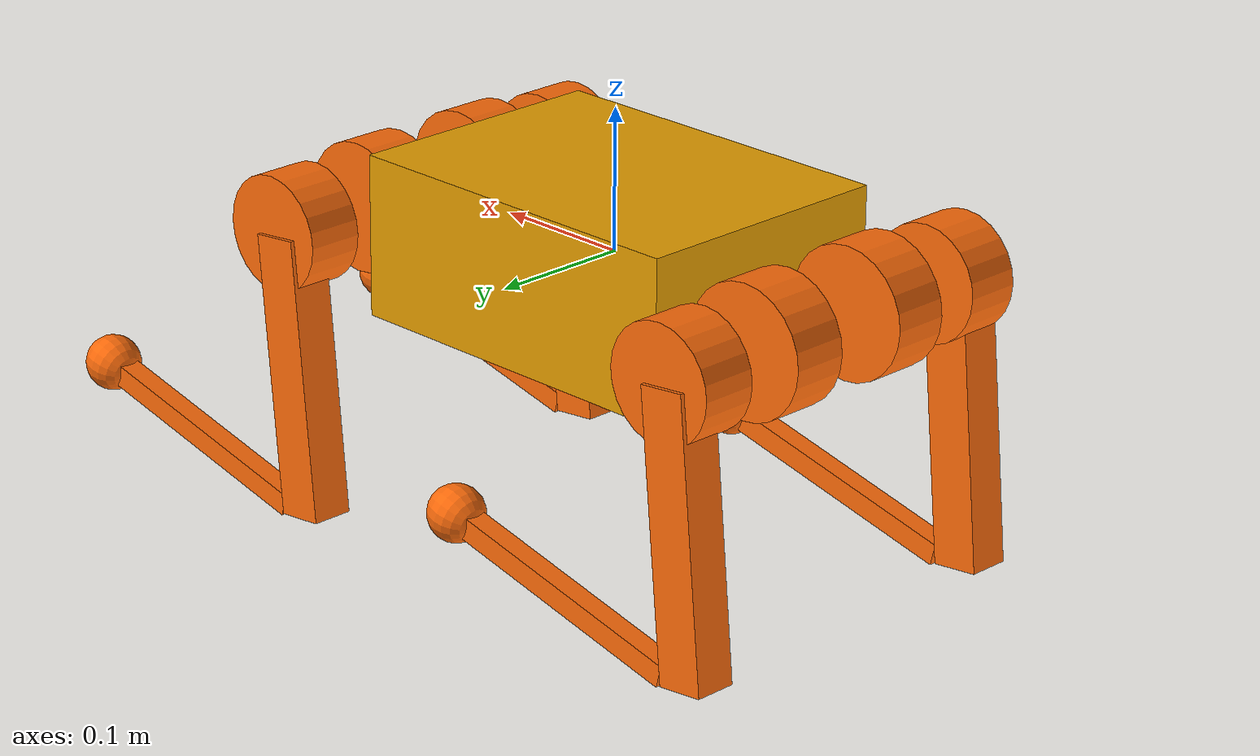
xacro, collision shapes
<?xml version="1.0"?>

<robot xmlns:xacro="http://www.ros.org/wiki/xacro" name="robot">

    <xacro:arg name="robot_type" default="a1"/>

    <xacro:include filename="$(find legged_robot_description)/urdf/common/materials.xacro"/>
    <xacro:include filename="$(find legged_robot_description)/urdf/common/leg.xacro"/>
    <xacro:include filename="$(find legged_robot_description)/urdf/common/gazebo.xacro"/>
    <xacro:include filename="$(find legged_robot_description)/urdf/common/imu.xacro"/>

    <xacro:include filename="$(find legged_robot_description)/urdf/$(arg robot_type)/const.xacro"/>

    <link name="base">
        <visual>
            <origin rpy="0 0 0" xyz="0 0 0"/>
            <geometry>
                <mesh filename="${mesh_path}/${trunk_mesh_file}" scale="1 1 1"/>
            </geometry>
        </visual>
        <collision>
            <origin rpy="0 0 0" xyz="0 0 0"/>
            <geometry>
                <box size="${trunk_length} ${trunk_width} ${trunk_height}"/>
            </geometry>
        </collision>
        <inertial>
            <origin rpy="0 0 0" xyz="${trunk_com_x} ${trunk_com_y} ${trunk_com_z}"/>
            <mass value="${trunk_mass}"/>
            <inertia
                    ixx="${trunk_ixx}" ixy="${trunk_ixy}" ixz="${trunk_ixz}"
                    iyy="${trunk_iyy}" iyz="${trunk_iyz}"
                    izz="${trunk_izz}"/>
        </inertial>
    </link>

    <xacro:IMU connected_to="base" imu_name="imu" xyz="0. 0. 0." rpy="0. 0. 0."/>

    <xacro:leg prefix="LF" mesh_path="${mesh_path}" mirror="1" mirror_dae="True" front_hind="1" front_hind_dae="True">
        <origin rpy="0 0 0" xyz="${leg_offset_x} ${leg_offset_y} 0"/>
    </xacro:leg>

    <xacro:leg prefix="LH" mesh_path="${mesh_path}" mirror="1" mirror_dae="True" front_hind="-1" front_hind_dae="False">
        <origin rpy="0 0 0" xyz="${-leg_offset_x} ${leg_offset_y} 0"/>
    </xacro:leg>

    <xacro:leg prefix="RF" mesh_path="${mesh_path}" mirror="-1" mirror_dae="False" front_hind="1" front_hind_dae="True">
        <origin rpy="0 0 0" xyz="${leg_offset_x} ${-leg_offset_y} 0"/>
    </xacro:leg>

    <xacro:leg prefix="RH" mesh_path="${mesh_path}" mirror="-1" mirror_dae="False" front_hind="-1" front_hind_dae="False">
        <origin rpy="0 0 0" xyz="${-leg_offset_x} ${-leg_offset_y} 0"/>
    </xacro:leg>

</robot>

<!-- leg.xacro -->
<robot xmlns:xacro="http://www.ros.org/wiki/xacro">

    <xacro:include filename="$(find legged_robot_description)/urdf/common/transmission.xacro"/>

    <xacro:macro name="leg" params="prefix mesh_path mirror mirror_dae front_hind front_hind_dae *origin">

        <joint name="${prefix}_HAA" type="revolute">
            <xacro:insert_block name="origin"/>
            <parent link="base"/>
            <child link="${prefix}_hip"/>
            <axis xyz="${haa_axis_x} 0 0"/>
            <dynamics damping="${damping}" friction="${friction}"/>
            <xacro:if value="${(mirror_dae == True)}">
                <limit effort="${hip_torque_max}" velocity="${hip_velocity_max}" lower="${hip_position_min}"
                       upper="${hip_position_max}"/>
            </xacro:if>
            <xacro:if value="${(mirror_dae == False)}">
                <limit effort="${hip_torque_max}" velocity="${hip_velocity_max}" lower="${-hip_position_max}"
                       upper="${-hip_position_min}"/>
            </xacro:if>
        </joint>

        <link name="${prefix}_hip">
            <visual>
                <xacro:if value="${(mirror_dae == True) and (front_hind_dae == True)}">
                    <origin rpy="0 0 0" xyz="0 0 0"/>
                </xacro:if>
                <xacro:if value="${(mirror_dae == False) and (front_hind_dae == True)}">
                    <origin rpy="${pi} 0 0" xyz="0 0 0"/>
                </xacro:if>
                <xacro:if value="${(mirror_dae == True) and (front_hind_dae == False)}">
                    <origin rpy="0 ${pi} 0" xyz="0 0 0"/>
                </xacro:if>
                <xacro:if value="${(mirror_dae == False) and (front_hind_dae == False)}">
                    <origin rpy="${pi} ${pi} 0" xyz="0 0 0"/>
                </xacro:if>
                <geometry>
                    <mesh filename="${mesh_path}/${hip_mesh_file}"
                          scale="1 1 1"/>
                </geometry>
                <material name="orange"/>
            </visual>
            <collision>
                <origin rpy="${pi/2.0} 0 0" xyz="0 0 0"/>
                <geometry>
                    <cylinder length="${hip_length}" radius="${hip_radius}"/>
                </geometry>
            </collision>
            <inertial>
                <origin rpy="0 0 0" xyz="${hip_com_x*front_hind} ${hip_com_y*mirror} ${hip_com_z}"/>
                <mass value="${hip_mass}"/>
                <inertia
                        ixx="${hip_ixx}" ixy="${hip_ixy*mirror*front_hind}" ixz="${hip_ixz*front_hind}"
                        iyy="${hip_iyy}" iyz="${hip_iyz*mirror}"
                        izz="${hip_izz}"/>
            </inertial>
        </link>

        <joint name="${prefix}_HFE" type="revolute">
            <origin rpy="0 0 0" xyz="0 ${thigh_offset*mirror} 0"/>
            <parent link="${prefix}_hip"/>
            <child link="${prefix}_thigh"/>
            <axis xyz="0 ${hfe_axis_y} 0"/>
            <dynamics damping="${damping}" friction="${friction}"/>
            <limit effort="${thigh_torque_max}" velocity="${thigh_velocity_max}" lower="${thigh_position_min}"
                   upper="${thigh_position_max}"/>
        </joint>

        <link name="${prefix}_thigh">
            <visual>
                <origin rpy="0 0 0" xyz="0 0 0"/>
                <geometry>
                    <xacro:if value="${mirror_dae == True}">
                        <mesh filename="${mesh_path}/${thigh_mesh_file}"
                              scale="1 1 1"/>
                    </xacro:if>
                    <xacro:if value="${mirror_dae == False}">
                        <mesh filename="${mesh_path}/${thigh_mirror_mesh_file}"
                              scale="${thigh_mirror_mesh_scale}"/>
                    </xacro:if>
                </geometry>
                <material name="orange"/>
            </visual>
            <collision>
                <origin rpy="0 ${pi/2.0+0.1} 0" xyz="${thigh_x_offset} 0 ${-thigh_length/2.0}"/>
                <geometry>
                    <box size="${thigh_length} ${thigh_width} ${thigh_height}"/>
                </geometry>
            </collision>
            <collision>
                <origin rpy="${pi/2.0} 0 0" xyz="0 ${mirror*thigh_shoulder_y_offset} 0"/>
                <geometry>
                    <cylinder length="${thigh_shoulder_length}" radius="${thigh_shoulder_radius}"/>
                </geometry>
            </collision>
            <inertial>
                <origin rpy="0 0 0" xyz="${thigh_com_x} ${thigh_com_y*mirror} ${thigh_com_z}"/>
                <mass value="${thigh_mass}"/>
                <inertia
                        ixx="${thigh_ixx}" ixy="${thigh_ixy*mirror}" ixz="${thigh_ixz}"
                        iyy="${thigh_iyy}" iyz="${thigh_iyz*mirror}"
                        izz="${thigh_izz}"/>
            </inertial>
        </link>

        <joint name="${prefix}_KFE" type="revolute">
            <origin rpy="0 0 0" xyz="0 0 ${-thigh_length}"/>
            <parent link="${prefix}_thigh"/>
            <child link="${prefix}_calf"/>
            <axis xyz="0 ${kfe_axis_y} 0"/>
            <dynamics damping="${damping}" friction="${friction}"/>
            <limit effort="${calf_torque_max}" velocity="${calf_velocity_max}" lower="${calf_position_min}" upper="${calf_position_max}"/>
        </joint>

        <link name="${prefix}_calf">
            <visual>
                <origin rpy="0 0 0" xyz="0 0 0"/>
                <geometry>
                    <mesh filename="${mesh_path}/${calf_mesh_file}"
                          scale="1 1 1"/>
                </geometry>
                <material name="orange"/>
            </visual>
            <collision>
                <origin rpy="0 ${pi/2.0} 0" xyz="${calf_x_offset} 0 ${-calf_length/2.0}"/>
                <geometry>
                    <box size="${calf_length} ${calf_width} ${calf_height}"/>
                </geometry>
            </collision>
            <inertial>
                <origin rpy="0 0 0" xyz="${calf_com_x} ${calf_com_y} ${calf_com_z}"/>
                <mass value="${calf_mass}"/>
                <inertia
                        ixx="${calf_ixx}" ixy="${calf_ixy}" ixz="${calf_ixz}"
                        iyy="${calf_iyy}" iyz="${calf_iyz}"
                        izz="${calf_izz}"/>
            </inertial>
        </link>

        <joint name="${prefix}_foot_fixed" type="fixed" dont_collapse="true">
            <origin rpy="0 0 0" xyz="0 0 ${-(calf_length)}"/>
            <parent link="${prefix}_calf"/>
            <child link="${prefix}_FOOT"/>
        </joint>

        <link name="${prefix}_FOOT">
            <visual>
                <origin rpy="0 0 0" xyz="0 0 0"/>
                <geometry>
                    <sphere radius="${foot_radius-0.01}"/>
                </geometry>
                <material name="orange"/>
            </visual>
            <collision>
                <origin rpy="0 0 0" xyz="0 0 0"/>
                <geometry>
                    <sphere radius="${foot_radius}"/>
                </geometry>
            </collision>
            <inertial>
                <mass value="${foot_mass}"/>
                <inertia
                        ixx="${(2*foot_mass)/5.0*(foot_radius*foot_radius)}" ixy="0.0" ixz="0.0"
                        iyy="${(2*foot_mass)/5.0*(foot_radius*foot_radius)}" iyz="0.0"
                        izz="${(2*foot_mass)/5.0*(foot_radius*foot_radius)}"/>
            </inertial>
        </link>

        <gazebo reference="${prefix}_foot_fixed">
            <disableFixedJointLumping>true</disableFixedJointLumping>
        </gazebo>

        <gazebo reference="${prefix}_hip">
            <mu1>0.2</mu1>
            <mu2>0.2</mu2>
            <material>Gazebo/DarkGrey</material>
        </gazebo>
        <gazebo reference="${prefix}_thigh">
            <mu1>0.2</mu1>
            <mu2>0.2</mu2>
            <self_collide>0</self_collide>
            <material>Gazebo/DarkGrey</material>
            <kp value="1000000.0"/>
            <kd value="100.0"/>
        </gazebo>
        <gazebo reference="${prefix}_calf">
            <mu1>0.2</mu1>
            <mu2>0.2</mu2>
            <self_collide>1</self_collide>
        </gazebo>
        <gazebo reference="${prefix}_FOOT">
            <mu1>0.6</mu1>
            <mu2>0.6</mu2>
            <self_collide>1</self_collide>
            <material>Gazebo/DarkGrey</material>
            <kp value="1000000.0"/>
            <kd value="100.0"/>
        </gazebo>

        <xacro:leg_transmission prefix="${prefix}"/>
    </xacro:macro>
</robot>

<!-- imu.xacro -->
<robot xmlns:xacro="http://www.ros.org/wiki/xacro" name="imu">
    <xacro:macro name="IMU" params="connected_to imu_name xyz:='0 0 0' rpy:='0 0 0' ">
        <!-- Imu is fixed to the base link -->
        <joint name="${imu_name}_joint" type="fixed">
            <origin xyz="${xyz}" rpy="${rpy}"/>
            <parent link="${connected_to}"/>
            <child link="${imu_name}"/>
        </joint>
        <!-- Imu link -->
        <link name="${imu_name}">
            <inertial>
                <mass value="0.01"/>
                <origin rpy="0 0 0" xyz="0 0 0"/>
                <inertia ixx="0.0001" ixy="0" ixz="0" iyy="0.0001" iyz="0" izz="0.0001"/>
            </inertial>
            <visual>
                <origin rpy="0 0 0" xyz="0 0 0"/>
                <geometry>
                    <box size="0.001 0.001 0.001"/>
                </geometry>
                <material name="orange">
                    <color rgba="1.0 0.4235 0.0392 1.0"/>
                </material>
            </visual>
            <collision>
            	<origin rpy="0 0 0" xyz="0 0 0"/>
            	<geometry>
                 <box size=".001 .001 .001"/>
            	</geometry>
            </collision>
        </link>
        <gazebo reference="${imu_name}">
            <material>Gazebo/Orange</material>
        </gazebo>
        <gazebo reference="${imu_name}_joint">
            <disableFixedJointLumping>true</disableFixedJointLumping>
        </gazebo>
    </xacro:macro>
</robot>

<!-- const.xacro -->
<robot xmlns:xacro="http://www.ros.org/wiki/xacro" name="a1_description">

    <!-- Constants for robot dimensions -->
    <xacro:property name="stick_mass" value="0.00001"/>

    <!-- simplified collision value -->
    <xacro:property name="trunk_width" value="0.194"/>
    <xacro:property name="trunk_length" value="0.267"/>
    <xacro:property name="trunk_height" value="0.114"/>
    <xacro:property name="hip_radius" value="0.046"/>
    <xacro:property name="hip_length" value="0.04"/>
    <xacro:property name="thigh_shoulder_radius" value="0.041"/>
    <xacro:property name="thigh_shoulder_length" value="0.04"/>
    <xacro:property name="thigh_shoulder_y_offset" value="-0.008"/>

    <xacro:property name="thigh_width" value="0.03"/>
    <xacro:property name="thigh_height" value="0.034"/>
    <xacro:property name="thigh_x_offset" value="-0.015"/>
    <xacro:property name="calf_width" value="0.016"/>
    <xacro:property name="calf_height" value="0.016"/>
    <xacro:property name="calf_x_offset" value="0.0"/>
    <xacro:property name="foot_radius" value="0.02"/>
    <xacro:property name="mesh_path" value="file://$(find legged_robot_description)/meshes/a1"/>
    <xacro:property name="trunk_mesh_file" value="trunk.dae"/>
    <xacro:property name="hip_mesh_file" value="hip.dae"/>
    <xacro:property name="thigh_mesh_file" value="thigh.dae"/>
    <xacro:property name="thigh_mirror_mesh_file" value="thigh_mirror.dae"/>
    <xacro:property name="thigh_mirror_mesh_scale" value="1 1 1"/>
    <xacro:property name="calf_mesh_file" value="calf.dae"/>
    <xacro:property name="haa_axis_x" value="1"/>
    <xacro:property name="hfe_axis_y" value="1"/>
    <xacro:property name="kfe_axis_y" value="1"/>

    <!-- kinematic value -->
    <xacro:property name="thigh_offset" value="0.0838"/>
    <xacro:property name="thigh_length" value="0.2"/>
    <xacro:property name="calf_length" value="0.2"/>

    <!-- leg offset from trunk center value -->
    <xacro:property name="leg_offset_x" value="0.1805"/>
    <xacro:property name="leg_offset_y" value="0.047"/>
    <xacro:property name="trunk_offset_z" value="0.01675"/>
    <xacro:property name="hip_offset" value="0.065"/>

    <!-- joint limits -->
    <xacro:property name="damping" value="0"/>
    <xacro:property name="friction" value="0"/>
    <xacro:property name="hip_position_max" value="${46*pi/180.0}"/>
    <xacro:property name="hip_position_min" value="${-46*pi/180.0}"/>
    <xacro:property name="hip_velocity_max" value="21"/>
    <xacro:property name="hip_torque_max" value="33.5"/>
    <xacro:property name="thigh_position_max" value="${240*pi/180.0}"/>
    <xacro:property name="thigh_position_min" value="${-60*pi/180.0}"/>
    <xacro:property name="thigh_velocity_max" value="21"/>
    <xacro:property name="thigh_torque_max" value="33.5"/>
    <xacro:property name="calf_position_max" value="${-52.5*pi/180.0}"/>
    <xacro:property name="calf_position_min" value="${-154.5*pi/180.0}"/>
    <xacro:property name="calf_velocity_max" value="21"/>
    <xacro:property name="calf_torque_max" value="33.5"/>

    <!-- dynamics inertial value -->
    <!-- trunk -->
    <!-- trunk_mass_ori=6 y=0.0041 x_m=-0.0080-->
    <xacro:property name="trunk_mass" value="10.0"/>
    <xacro:property name="trunk_com_x" value="-0.0080"/>
    <xacro:property name="trunk_com_y" value="0.0041"/>
    <xacro:property name="trunk_com_z" value="-0.0005"/>
    <xacro:property name="trunk_ixx" value="0.0158533"/>
    <xacro:property name="trunk_ixy" value="-0.0000366"/>
    <xacro:property name="trunk_ixz" value="-0.0000611"/>
    <xacro:property name="trunk_iyy" value="0.0377999"/>
    <xacro:property name="trunk_iyz" value="-0.0000275"/>
    <xacro:property name="trunk_izz" value="0.0456542"/>

    <!-- hip (left front) -->
    <xacro:property name="hip_mass" value="0.595"/>
    <xacro:property name="hip_com_x" value="-0.003875"/>
    <xacro:property name="hip_com_y" value="0.001622"/>
    <xacro:property name="hip_com_z" value="0.000042"/>
    <xacro:property name="hip_ixx" value="0.000402747"/>
    <xacro:property name="hip_ixy" value="-0.000008709"/>
    <xacro:property name="hip_ixz" value="-0.000000297"/>
    <xacro:property name="hip_iyy" value="0.000691123"/>
    <xacro:property name="hip_iyz" value="-0.000000545"/>
    <xacro:property name="hip_izz" value="0.000487919"/>

    <!-- thigh -->
    <xacro:property name="thigh_mass" value="0.888"/>
    <xacro:property name="thigh_com_x" value="-0.003574"/>
    <xacro:property name="thigh_com_y" value="-0.019529"/>
    <xacro:property name="thigh_com_z" value="-0.030323"/>
    <xacro:property name="thigh_ixx" value="0.005251806"/>
    <xacro:property name="thigh_ixy" value="-0.000002168"/>
    <xacro:property name="thigh_ixz" value="0.000346889"/>
    <xacro:property name="thigh_iyy" value="0.005000475"/>
    <xacro:property name="thigh_iyz" value="-0.000028174"/>
    <xacro:property name="thigh_izz" value="0.001110200"/>

    <!-- calf -->
    <xacro:property name="calf_mass" value="0.151"/>
    <xacro:property name="calf_com_x" value="0.007105"/>
    <xacro:property name="calf_com_y" value="-0.000239"/>
    <xacro:property name="calf_com_z" value="-0.096933"/>
    <xacro:property name="calf_ixx" value="0.002344758"/>
    <xacro:property name="calf_ixy" value="0.0"/>
    <xacro:property name="calf_ixz" value="-0.000141275"/>
    <xacro:property name="calf_iyy" value="0.002360755"/>
    <xacro:property name="calf_iyz" value="0.0"/>
    <xacro:property name="calf_izz" value="0.000031158"/>

    <!-- foot -->
    <xacro:property name="foot_mass" value="0.06"/>

</robot>
